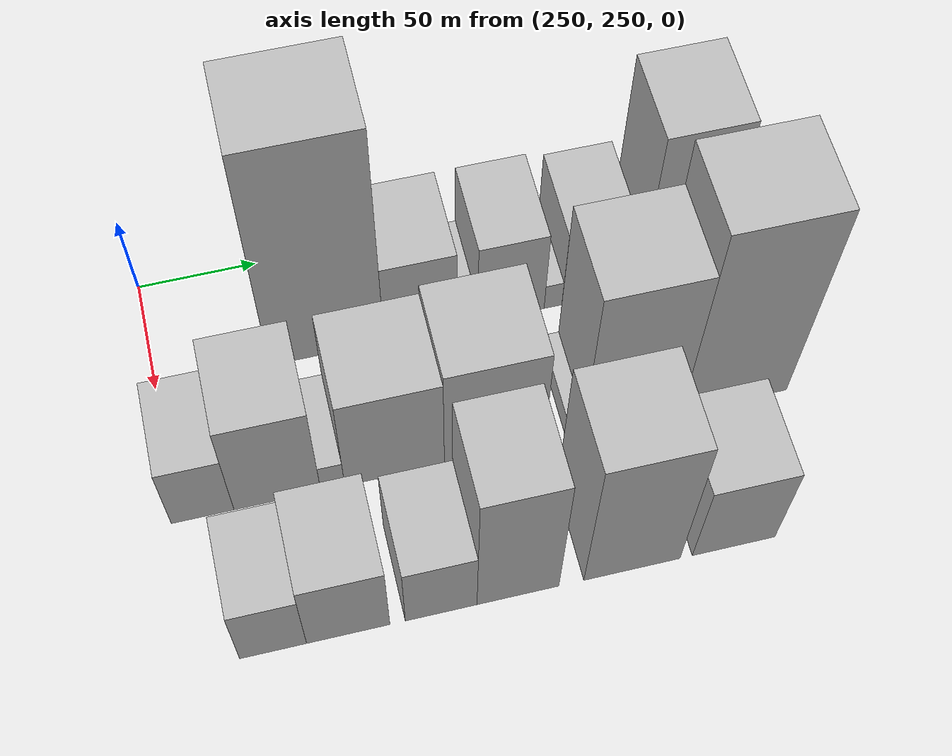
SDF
<sdf version="1.6">
 <world name="default">
  <model name="building_197">
   <static>1</static>
   <pose>280.0000 321.5544 0 0.000000 0.000000 0.000000</pose>
   <link name="link">
    <pose>0 0 75.00 0 0 0</pose>
    <collision name="collision"><geometry><box><size>40.0000 48.5648 150.0000</size></box></geometry></collision>
    <visual name="visual">
     <cast_shadows>0</cast_shadows>
     <geometry><box><size>40.0000 48.5648 150.0000</size></box></geometry>
     <material>
      <script>
       <uri>model://HANNAS_wall/materials/scripts</uri>
       <uri>model://HANNAS_wall/materials/textures</uri>
       <name>vrc/HANNAS_wall</name>
      </script>
     </material>
    </visual>
   </link>
  </model>
  <model name="building_198">
   <static>1</static>
   <pose>280.0000 361.4236 0 0.000000 0.000000 0.000000</pose>
   <link name="link">
    <pose>0 0 28.50 0 0 0</pose>
    <collision name="collision"><geometry><box><size>40.0000 31.1736 57.0000</size></box></geometry></collision>
    <visual name="visual">
     <cast_shadows>0</cast_shadows>
     <geometry><box><size>40.0000 31.1736 57.0000</size></box></geometry>
     <material>
      <script>
       <uri>model://HANNAS_wall/materials/scripts</uri>
       <uri>model://HANNAS_wall/materials/textures</uri>
       <name>vrc/HANNAS_wall</name>
      </script>
     </material>
    </visual>
   </link>
  </model>
  <model name="building_199">
   <static>1</static>
   <pose>280.0000 381.3711 0 0.000000 0.000000 0.000000</pose>
   <link name="link">
    <pose>0 0 9.00 0 0 0</pose>
    <collision name="collision"><geometry><box><size>40.0000 8.7213 18.0000</size></box></geometry></collision>
    <visual name="visual">
     <cast_shadows>0</cast_shadows>
     <geometry><box><size>40.0000 8.7213 18.0000</size></box></geometry>
     <material>
      <script>
       <uri>model://HANNAS_wall/materials/scripts</uri>
       <uri>model://HANNAS_wall/materials/textures</uri>
       <name>vrc/HANNAS_wall</name>
      </script>
     </material>
    </visual>
   </link>
  </model>
  <model name="building_200">
   <static>1</static>
   <pose>280.0000 400.1858 0 0.000000 0.000000 0.000000</pose>
   <link name="link">
    <pose>0 0 28.50 0 0 0</pose>
    <collision name="collision"><geometry><box><size>40.0000 28.9082 57.0000</size></box></geometry></collision>
    <visual name="visual">
     <cast_shadows>0</cast_shadows>
     <geometry><box><size>40.0000 28.9082 57.0000</size></box></geometry>
     <material>
      <script>
       <uri>model://HANNAS_wall/materials/scripts</uri>
       <uri>model://HANNAS_wall/materials/textures</uri>
       <name>vrc/HANNAS_wall</name>
      </script>
     </material>
    </visual>
   </link>
  </model>
  <model name="building_201">
   <static>1</static>
   <pose>280.0000 418.4963 0 0.000000 0.000000 0.000000</pose>
   <link name="link">
    <pose>0 0 9.00 0 0 0</pose>
    <collision name="collision"><geometry><box><size>40.0000 7.7127 18.0000</size></box></geometry></collision>
    <visual name="visual">
     <cast_shadows>0</cast_shadows>
     <geometry><box><size>40.0000 7.7127 18.0000</size></box></geometry>
     <material>
      <script>
       <uri>model://HANNAS_wall/materials/scripts</uri>
       <uri>model://HANNAS_wall/materials/textures</uri>
       <name>vrc/HANNAS_wall</name>
      </script>
     </material>
    </visual>
   </link>
  </model>
  <model name="building_202">
   <static>1</static>
   <pose>280.0000 436.6952 0 0.000000 0.000000 0.000000</pose>
   <link name="link">
    <pose>0 0 27.00 0 0 0</pose>
    <collision name="collision"><geometry><box><size>40.0000 28.6851 54.0000</size></box></geometry></collision>
    <visual name="visual">
     <cast_shadows>0</cast_shadows>
     <geometry><box><size>40.0000 28.6851 54.0000</size></box></geometry>
     <material>
      <script>
       <uri>model://HANNAS_wall/materials/scripts</uri>
       <uri>model://HANNAS_wall/materials/textures</uri>
       <name>vrc/HANNAS_wall</name>
      </script>
     </material>
    </visual>
   </link>
  </model>
  <model name="building_203">
   <static>1</static>
   <pose>280.0000 473.7985 0 0.000000 0.000000 0.000000</pose>
   <link name="link">
    <pose>0 0 54.00 0 0 0</pose>
    <collision name="collision"><geometry><box><size>40.0000 35.5214 108.0000</size></box></geometry></collision>
    <visual name="visual">
     <cast_shadows>0</cast_shadows>
     <geometry><box><size>40.0000 35.5214 108.0000</size></box></geometry>
     <material>
      <script>
       <uri>model://HANNAS_wall/materials/scripts</uri>
       <uri>model://HANNAS_wall/materials/textures</uri>
       <name>vrc/HANNAS_wall</name>
      </script>
     </material>
    </visual>
   </link>
  </model>
  <model name="building_251">
   <static>1</static>
   <pose>340.0000 259.9228 0 0.000000 0.000000 0.000000</pose>
   <link name="link">
    <pose>0 0 22.50 0 0 0</pose>
    <collision name="collision"><geometry><box><size>40.0000 24.9281 45.0000</size></box></geometry></collision>
    <visual name="visual">
     <cast_shadows>0</cast_shadows>
     <geometry><box><size>40.0000 24.9281 45.0000</size></box></geometry>
     <material>
      <script>
       <uri>model://HANNAS_wall/materials/scripts</uri>
       <uri>model://HANNAS_wall/materials/textures</uri>
       <name>vrc/HANNAS_wall</name>
      </script>
     </material>
    </visual>
   </link>
  </model>
  <model name="building_252">
   <static>1</static>
   <pose>340.0000 289.8086 0 0.000000 0.000000 0.000000</pose>
   <link name="link">
    <pose>0 0 34.50 0 0 0</pose>
    <collision name="collision"><geometry><box><size>40.0000 34.8436 69.0000</size></box></geometry></collision>
    <visual name="visual">
     <cast_shadows>0</cast_shadows>
     <geometry><box><size>40.0000 34.8436 69.0000</size></box></geometry>
     <material>
      <script>
       <uri>model://HANNAS_wall/materials/scripts</uri>
       <uri>model://HANNAS_wall/materials/textures</uri>
       <name>vrc/HANNAS_wall</name>
      </script>
     </material>
    </visual>
   </link>
  </model>
  <model name="building_253">
   <static>1</static>
   <pose>340.0000 312.0776 0 0.000000 0.000000 0.000000</pose>
   <link name="link">
    <pose>0 0 10.50 0 0 0</pose>
    <collision name="collision"><geometry><box><size>40.0000 9.6943 21.0000</size></box></geometry></collision>
    <visual name="visual">
     <cast_shadows>0</cast_shadows>
     <geometry><box><size>40.0000 9.6943 21.0000</size></box></geometry>
     <material>
      <script>
       <uri>model://HANNAS_wall/materials/scripts</uri>
       <uri>model://HANNAS_wall/materials/textures</uri>
       <name>vrc/HANNAS_wall</name>
      </script>
     </material>
    </visual>
   </link>
  </model>
  <model name="building_254">
   <static>1</static>
   <pose>340.0000 337.2378 0 0.000000 0.000000 0.000000</pose>
   <link name="link">
    <pose>0 0 34.50 0 0 0</pose>
    <collision name="collision"><geometry><box><size>40.0000 40.6262 69.0000</size></box></geometry></collision>
    <visual name="visual">
     <cast_shadows>0</cast_shadows>
     <geometry><box><size>40.0000 40.6262 69.0000</size></box></geometry>
     <material>
      <script>
       <uri>model://HANNAS_wall/materials/scripts</uri>
       <uri>model://HANNAS_wall/materials/textures</uri>
       <name>vrc/HANNAS_wall</name>
      </script>
     </material>
    </visual>
   </link>
  </model>
  <model name="building_255">
   <static>1</static>
   <pose>340.0000 378.2071 0 0.000000 0.000000 0.000000</pose>
   <link name="link">
    <pose>0 0 37.50 0 0 0</pose>
    <collision name="collision"><geometry><box><size>40.0000 41.3124 75.0000</size></box></geometry></collision>
    <visual name="visual">
     <cast_shadows>0</cast_shadows>
     <geometry><box><size>40.0000 41.3124 75.0000</size></box></geometry>
     <material>
      <script>
       <uri>model://HANNAS_wall/materials/scripts</uri>
       <uri>model://HANNAS_wall/materials/textures</uri>
       <name>vrc/HANNAS_wall</name>
      </script>
     </material>
    </visual>
   </link>
  </model>
  <model name="building_256">
   <static>1</static>
   <pose>340.0000 411.3108 0 0.000000 0.000000 0.000000</pose>
   <link name="link">
    <pose>0 0 7.50 0 0 0</pose>
    <collision name="collision"><geometry><box><size>40.0000 6.8949 15.0000</size></box></geometry></collision>
    <visual name="visual">
     <cast_shadows>0</cast_shadows>
     <geometry><box><size>40.0000 6.8949 15.0000</size></box></geometry>
     <material>
      <script>
       <uri>model://HANNAS_wall/materials/scripts</uri>
       <uri>model://HANNAS_wall/materials/textures</uri>
       <name>vrc/HANNAS_wall</name>
      </script>
     </material>
    </visual>
   </link>
  </model>
  <model name="building_257">
   <static>1</static>
   <pose>340.0000 435.5903 0 0.000000 0.000000 0.000000</pose>
   <link name="link">
    <pose>0 0 54.00 0 0 0</pose>
    <collision name="collision"><geometry><box><size>40.0000 41.6641 108.0000</size></box></geometry></collision>
    <visual name="visual">
     <cast_shadows>0</cast_shadows>
     <geometry><box><size>40.0000 41.6641 108.0000</size></box></geometry>
     <material>
      <script>
       <uri>model://HANNAS_wall/materials/scripts</uri>
       <uri>model://HANNAS_wall/materials/textures</uri>
       <name>vrc/HANNAS_wall</name>
      </script>
     </material>
    </visual>
   </link>
  </model>
  <model name="building_258">
   <static>1</static>
   <pose>340.0000 478.9273 0 0.000000 0.000000 0.000000</pose>
   <link name="link">
    <pose>0 0 67.50 0 0 0</pose>
    <collision name="collision"><geometry><box><size>40.0000 45.0100 135.0000</size></box></geometry></collision>
    <visual name="visual">
     <cast_shadows>0</cast_shadows>
     <geometry><box><size>40.0000 45.0100 135.0000</size></box></geometry>
     <material>
      <script>
       <uri>model://HANNAS_wall/materials/scripts</uri>
       <uri>model://HANNAS_wall/materials/textures</uri>
       <name>vrc/HANNAS_wall</name>
      </script>
     </material>
    </visual>
   </link>
  </model>
  <model name="building_307">
   <static>1</static>
   <pose>400.0000 277.2289 0 0.000000 0.000000 0.000000</pose>
   <link name="link">
    <pose>0 0 22.50 0 0 0</pose>
    <collision name="collision"><geometry><box><size>40.0000 25.6376 45.0000</size></box></geometry></collision>
    <visual name="visual">
     <cast_shadows>0</cast_shadows>
     <geometry><box><size>40.0000 25.6376 45.0000</size></box></geometry>
     <material>
      <script>
       <uri>model://HANNAS_wall/materials/scripts</uri>
       <uri>model://HANNAS_wall/materials/textures</uri>
       <name>vrc/HANNAS_wall</name>
      </script>
     </material>
    </visual>
   </link>
  </model>
  <model name="building_308">
   <static>1</static>
   <pose>400.0000 306.1506 0 0.000000 0.000000 0.000000</pose>
   <link name="link">
    <pose>0 0 27.00 0 0 0</pose>
    <collision name="collision"><geometry><box><size>40.0000 32.2058 54.0000</size></box></geometry></collision>
    <visual name="visual">
     <cast_shadows>0</cast_shadows>
     <geometry><box><size>40.0000 32.2058 54.0000</size></box></geometry>
     <material>
      <script>
       <uri>model://HANNAS_wall/materials/scripts</uri>
       <uri>model://HANNAS_wall/materials/textures</uri>
       <name>vrc/HANNAS_wall</name>
      </script>
     </material>
    </visual>
   </link>
  </model>
  <model name="building_309">
   <static>1</static>
   <pose>400.0000 342.2818 0 0.000000 0.000000 0.000000</pose>
   <link name="link">
    <pose>0 0 24.00 0 0 0</pose>
    <collision name="collision"><geometry><box><size>40.0000 28.0565 48.0000</size></box></geometry></collision>
    <visual name="visual">
     <cast_shadows>0</cast_shadows>
     <geometry><box><size>40.0000 28.0565 48.0000</size></box></geometry>
     <material>
      <script>
       <uri>model://HANNAS_wall/materials/scripts</uri>
       <uri>model://HANNAS_wall/materials/textures</uri>
       <name>vrc/HANNAS_wall</name>
      </script>
     </material>
    </visual>
   </link>
  </model>
  <model name="building_310">
   <static>1</static>
   <pose>400.0000 372.5120 0 0.000000 0.000000 0.000000</pose>
   <link name="link">
    <pose>0 0 48.00 0 0 0</pose>
    <collision name="collision"><geometry><box><size>40.0000 32.4040 96.0000</size></box></geometry></collision>
    <visual name="visual">
     <cast_shadows>0</cast_shadows>
     <geometry><box><size>40.0000 32.4040 96.0000</size></box></geometry>
     <material>
      <script>
       <uri>model://HANNAS_wall/materials/scripts</uri>
       <uri>model://HANNAS_wall/materials/textures</uri>
       <name>vrc/HANNAS_wall</name>
      </script>
     </material>
    </visual>
   </link>
  </model>
  <model name="building_311">
   <static>1</static>
   <pose>400.0000 418.0719 0 0.000000 0.000000 0.000000</pose>
   <link name="link">
    <pose>0 0 51.00 0 0 0</pose>
    <collision name="collision"><geometry><box><size>40.0000 38.7157 102.0000</size></box></geometry></collision>
    <visual name="visual">
     <cast_shadows>0</cast_shadows>
     <geometry><box><size>40.0000 38.7157 102.0000</size></box></geometry>
     <material>
      <script>
       <uri>model://HANNAS_wall/materials/scripts</uri>
       <uri>model://HANNAS_wall/materials/textures</uri>
       <name>vrc/HANNAS_wall</name>
      </script>
     </material>
    </visual>
   </link>
  </model>
  <model name="building_312">
   <static>1</static>
   <pose>400.0000 459.2894 0 0.000000 0.000000 0.000000</pose>
   <link name="link">
    <pose>0 0 30.00 0 0 0</pose>
    <collision name="collision"><geometry><box><size>40.0000 33.7192 60.0000</size></box></geometry></collision>
    <visual name="visual">
     <cast_shadows>0</cast_shadows>
     <geometry><box><size>40.0000 33.7192 60.0000</size></box></geometry>
     <material>
      <script>
       <uri>model://HANNAS_wall/materials/scripts</uri>
       <uri>model://HANNAS_wall/materials/textures</uri>
       <name>vrc/HANNAS_wall</name>
      </script>
     </material>
    </visual>
   </link>
  </model>
 </world>
</sdf>
